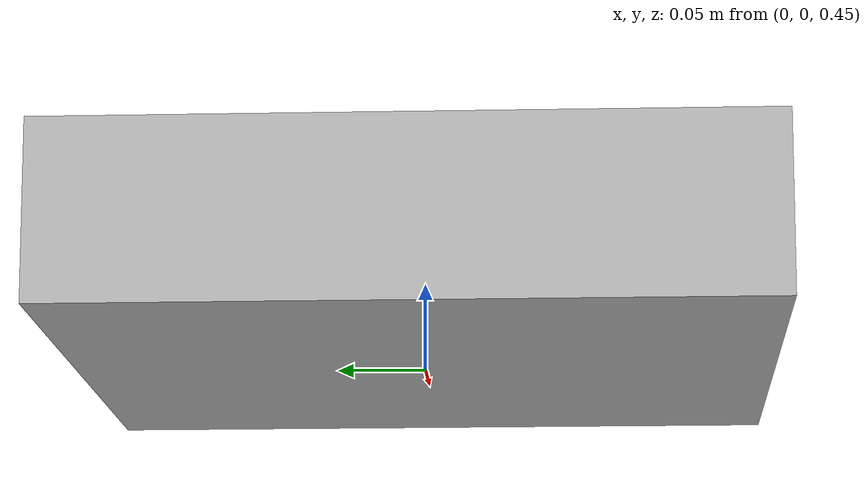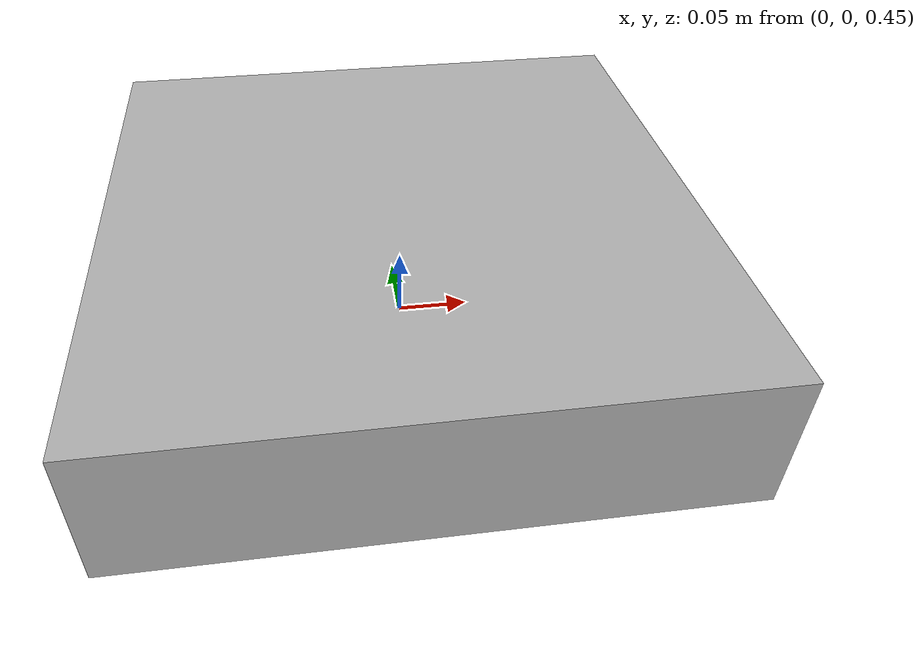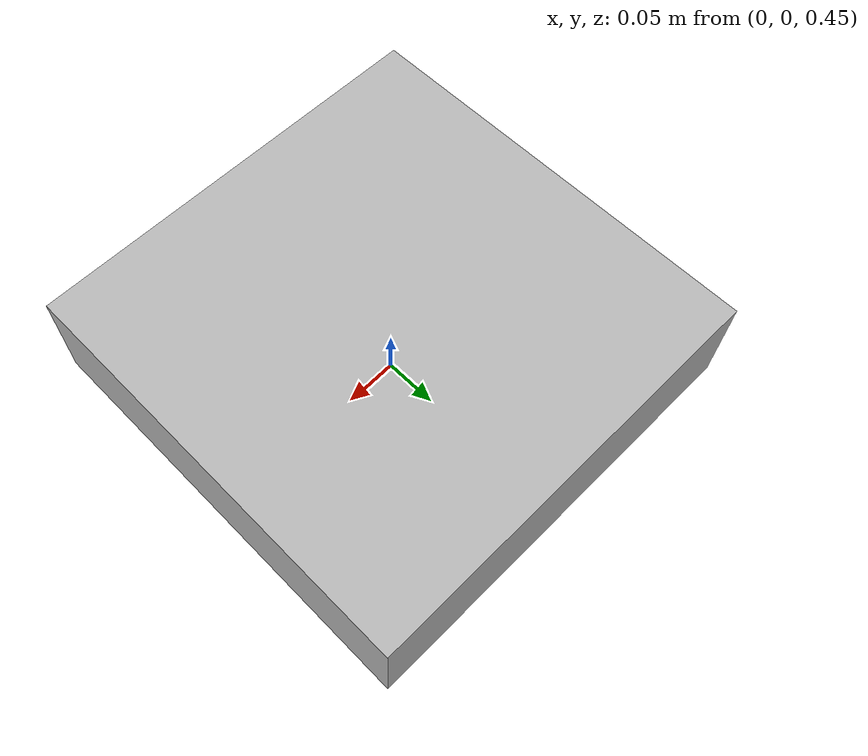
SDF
<?xml version="1.0" ?>
<sdf version="1.6">
  <model name="quadcopter">
    <pose>0 0 0.5 0 0 0</pose>
    <link name="base_link">
      <inertial>
        <mass>1.5</mass>
        <inertia>
          <ixx>0.02125</ixx> <ixy>0</ixy> <ixz>0</ixz>
          <iyy>0.02125</iyy> <iyz>0</iyz>
          <izz>0.04</izz>
        </inertia>
      </inertial>

      <collision name="collision">
        <geometry>
          <box><size>0.4 0.4 0.1</size></box>
        </geometry>
      </collision>

      <visual name="visual">
        <geometry>
          <box><size>0.4 0.4 0.1</size></box>
        </geometry>
      </visual>

      <sensor name="imu_sensor" type="imu">
        <always_on>1</always_on>
        <update_rate>500</update_rate>
      </sensor>

      <sensor name="magnetometer" type="magnetometer">
        <always_on>1</always_on>
        <update_rate>50</update_rate>
      </sensor>

      <sensor name="air_pressure_sensor" type="air_pressure">
        <always_on>1</always_on>
        <update_rate>50</update_rate>
      </sensor>

      <sensor name="gpu_lidar" type="gpu_lidar">
        <pose>0 0 -0.05 0 1.5707 0</pose>
        <update_rate>50</update_rate>
        <ray>
            <scan>
                <horizontal>
                    <samples>1</samples>
                    <resolution>1</resolution>
                    <min_angle>0</min_angle>
                    <max_angle>0</max_angle>
                </horizontal>
            </scan>
            <range>
                <min>0.05</min>
                <max>40.0</max>
            </range>
        </ray>
      </sensor>

      <sensor name="navsat" type="navsat">
        <always_on>1</always_on>
        <update_rate>10</update_rate>
      </sensor>

      <sensor name="camera" type="camera">
        <pose>0 0 -0.05 0 1.5707 0</pose>
        <camera>
          <horizontal_fov>1.047</horizontal_fov>
          <image>
            <width>320</width>
            <height>240</height>
          </image>
          <clip>
            <near>0.1</near>
            <far>100</far>
          </clip>
        </camera>
        <always_on>1</always_on>
        <update_rate>30</update_rate>
      </sensor>
    </link>
  </model>
</sdf>
